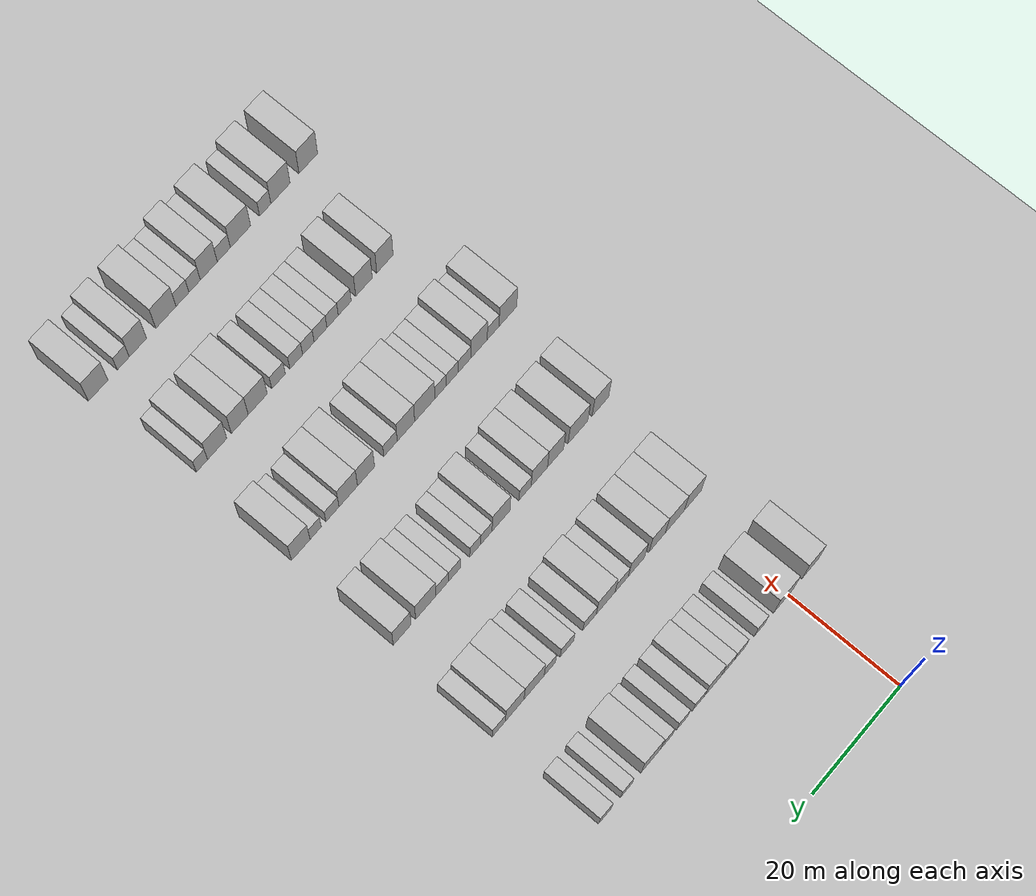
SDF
<sdf version="1.6">
 <world name="default">
  <include><name>ground_plane_1</name><uri>model://HANNAS_ground_plane</uri></include>
  <include>
   <name>ground_plane_2</name>
   <uri>model://HANNAS_ground_plane</uri>
   <pose>100 0 0  0 0 0</pose>
  </include>
  <model name="building_91">
   <static>1</static>
   <pose>25.0000 -4.8727 0 0.000000 0.000000 0.000000</pose>
   <link name="link">
    <pose>0 0 4.50 0 0 0</pose>
    <collision name="collision"><geometry><box><size>10.0000 3.7744 9.0000</size></box></geometry></collision>
    <visual name="visual">
     <cast_shadows>0</cast_shadows>
     <geometry><box><size>10.0000 3.7744 9.0000</size></box></geometry>
     <material>
      <script>
       <uri>model://HANNAS_wall/materials/scripts</uri>
       <uri>model://HANNAS_wall/materials/textures</uri>
       <name>vrc/HANNAS_wall</name>
      </script>
     </material>
    </visual>
   </link>
  </model>
  <model name="building_92">
   <static>1</static>
   <pose>25.0000 1.2493 0 0.000000 0.000000 0.000000</pose>
   <link name="link">
    <pose>0 0 4.50 0 0 0</pose>
    <collision name="collision"><geometry><box><size>10.0000 4.4696 9.0000</size></box></geometry></collision>
    <visual name="visual">
     <cast_shadows>0</cast_shadows>
     <geometry><box><size>10.0000 4.4696 9.0000</size></box></geometry>
     <material>
      <script>
       <uri>model://HANNAS_wall/materials/scripts</uri>
       <uri>model://HANNAS_wall/materials/textures</uri>
       <name>vrc/HANNAS_wall</name>
      </script>
     </material>
    </visual>
   </link>
  </model>
  <model name="building_93">
   <static>1</static>
   <pose>25.0000 6.6872 0 0.000000 0.000000 0.000000</pose>
   <link name="link">
    <pose>0 0 3.00 0 0 0</pose>
    <collision name="collision"><geometry><box><size>10.0000 2.4061 6.0000</size></box></geometry></collision>
    <visual name="visual">
     <cast_shadows>0</cast_shadows>
     <geometry><box><size>10.0000 2.4061 6.0000</size></box></geometry>
     <material>
      <script>
       <uri>model://HANNAS_wall/materials/scripts</uri>
       <uri>model://HANNAS_wall/materials/textures</uri>
       <name>vrc/HANNAS_wall</name>
      </script>
     </material>
    </visual>
   </link>
  </model>
  <model name="building_94">
   <static>1</static>
   <pose>25.0000 11.1910 0 0.000000 0.000000 0.000000</pose>
   <link name="link">
    <pose>0 0 3.00 0 0 0</pose>
    <collision name="collision"><geometry><box><size>10.0000 2.6015 6.0000</size></box></geometry></collision>
    <visual name="visual">
     <cast_shadows>0</cast_shadows>
     <geometry><box><size>10.0000 2.6015 6.0000</size></box></geometry>
     <material>
      <script>
       <uri>model://HANNAS_wall/materials/scripts</uri>
       <uri>model://HANNAS_wall/materials/textures</uri>
       <name>vrc/HANNAS_wall</name>
      </script>
     </material>
    </visual>
   </link>
  </model>
  <model name="building_95">
   <static>1</static>
   <pose>25.0000 13.9450 0 0.000000 0.000000 0.000000</pose>
   <link name="link">
    <pose>0 0 3.00 0 0 0</pose>
    <collision name="collision"><geometry><box><size>10.0000 2.9067 6.0000</size></box></geometry></collision>
    <visual name="visual">
     <cast_shadows>0</cast_shadows>
     <geometry><box><size>10.0000 2.9067 6.0000</size></box></geometry>
     <material>
      <script>
       <uri>model://HANNAS_wall/materials/scripts</uri>
       <uri>model://HANNAS_wall/materials/textures</uri>
       <name>vrc/HANNAS_wall</name>
      </script>
     </material>
    </visual>
   </link>
  </model>
  <model name="building_96">
   <static>1</static>
   <pose>25.0000 17.2794 0 0.000000 0.000000 0.000000</pose>
   <link name="link">
    <pose>0 0 4.50 0 0 0</pose>
    <collision name="collision"><geometry><box><size>10.0000 3.7620 9.0000</size></box></geometry></collision>
    <visual name="visual">
     <cast_shadows>0</cast_shadows>
     <geometry><box><size>10.0000 3.7620 9.0000</size></box></geometry>
     <material>
      <script>
       <uri>model://HANNAS_wall/materials/scripts</uri>
       <uri>model://HANNAS_wall/materials/textures</uri>
       <name>vrc/HANNAS_wall</name>
      </script>
     </material>
    </visual>
   </link>
  </model>
  <model name="building_97">
   <static>1</static>
   <pose>25.0000 20.4847 0 0.000000 0.000000 0.000000</pose>
   <link name="link">
    <pose>0 0 3.00 0 0 0</pose>
    <collision name="collision"><geometry><box><size>10.0000 2.6488 6.0000</size></box></geometry></collision>
    <visual name="visual">
     <cast_shadows>0</cast_shadows>
     <geometry><box><size>10.0000 2.6488 6.0000</size></box></geometry>
     <material>
      <script>
       <uri>model://HANNAS_wall/materials/scripts</uri>
       <uri>model://HANNAS_wall/materials/textures</uri>
       <name>vrc/HANNAS_wall</name>
      </script>
     </material>
    </visual>
   </link>
  </model>
  <model name="building_98">
   <static>1</static>
   <pose>25.0000 24.0516 0 0.000000 0.000000 0.000000</pose>
   <link name="link">
    <pose>0 0 3.00 0 0 0</pose>
    <collision name="collision"><geometry><box><size>10.0000 2.4849 6.0000</size></box></geometry></collision>
    <visual name="visual">
     <cast_shadows>0</cast_shadows>
     <geometry><box><size>10.0000 2.4849 6.0000</size></box></geometry>
     <material>
      <script>
       <uri>model://HANNAS_wall/materials/scripts</uri>
       <uri>model://HANNAS_wall/materials/textures</uri>
       <name>vrc/HANNAS_wall</name>
      </script>
     </material>
    </visual>
   </link>
  </model>
  <model name="building_99">
   <static>1</static>
   <pose>25.0000 27.5423 0 0.000000 0.000000 0.000000</pose>
   <link name="link">
    <pose>0 0 3.00 0 0 0</pose>
    <collision name="collision"><geometry><box><size>10.0000 2.4965 6.0000</size></box></geometry></collision>
    <visual name="visual">
     <cast_shadows>0</cast_shadows>
     <geometry><box><size>10.0000 2.4965 6.0000</size></box></geometry>
     <material>
      <script>
       <uri>model://HANNAS_wall/materials/scripts</uri>
       <uri>model://HANNAS_wall/materials/textures</uri>
       <name>vrc/HANNAS_wall</name>
      </script>
     </material>
    </visual>
   </link>
  </model>
  <model name="building_100">
   <static>1</static>
   <pose>25.0000 30.9717 0 0.000000 0.000000 0.000000</pose>
   <link name="link">
    <pose>0 0 4.50 0 0 0</pose>
    <collision name="collision"><geometry><box><size>10.0000 4.3622 9.0000</size></box></geometry></collision>
    <visual name="visual">
     <cast_shadows>0</cast_shadows>
     <geometry><box><size>10.0000 4.3622 9.0000</size></box></geometry>
     <material>
      <script>
       <uri>model://HANNAS_wall/materials/scripts</uri>
       <uri>model://HANNAS_wall/materials/textures</uri>
       <name>vrc/HANNAS_wall</name>
      </script>
     </material>
    </visual>
   </link>
  </model>
  <model name="building_101">
   <static>1</static>
   <pose>25.0000 36.3981 0 0.000000 0.000000 0.000000</pose>
   <link name="link">
    <pose>0 0 3.00 0 0 0</pose>
    <collision name="collision"><geometry><box><size>10.0000 2.4907 6.0000</size></box></geometry></collision>
    <visual name="visual">
     <cast_shadows>0</cast_shadows>
     <geometry><box><size>10.0000 2.4907 6.0000</size></box></geometry>
     <material>
      <script>
       <uri>model://HANNAS_wall/materials/scripts</uri>
       <uri>model://HANNAS_wall/materials/textures</uri>
       <name>vrc/HANNAS_wall</name>
      </script>
     </material>
    </visual>
   </link>
  </model>
  <model name="building_102">
   <static>1</static>
   <pose>25.0000 41.0249 0 0.000000 0.000000 0.000000</pose>
   <link name="link">
    <pose>0 0 3.00 0 0 0</pose>
    <collision name="collision"><geometry><box><size>10.0000 2.7629 6.0000</size></box></geometry></collision>
    <visual name="visual">
     <cast_shadows>0</cast_shadows>
     <geometry><box><size>10.0000 2.7629 6.0000</size></box></geometry>
     <material>
      <script>
       <uri>model://HANNAS_wall/materials/scripts</uri>
       <uri>model://HANNAS_wall/materials/textures</uri>
       <name>vrc/HANNAS_wall</name>
      </script>
     </material>
    </visual>
   </link>
  </model>
  <model name="building_256">
   <static>1</static>
   <pose>44.0000 -1.8408 0 0.000000 0.000000 0.000000</pose>
   <link name="link">
    <pose>0 0 4.50 0 0 0</pose>
    <collision name="collision"><geometry><box><size>10.0000 3.8670 9.0000</size></box></geometry></collision>
    <visual name="visual">
     <cast_shadows>0</cast_shadows>
     <geometry><box><size>10.0000 3.8670 9.0000</size></box></geometry>
     <material>
      <script>
       <uri>model://HANNAS_wall/materials/scripts</uri>
       <uri>model://HANNAS_wall/materials/textures</uri>
       <name>vrc/HANNAS_wall</name>
      </script>
     </material>
    </visual>
   </link>
  </model>
  <model name="building_257">
   <static>1</static>
   <pose>44.0000 2.2247 0 0.000000 0.000000 0.000000</pose>
   <link name="link">
    <pose>0 0 4.50 0 0 0</pose>
    <collision name="collision"><geometry><box><size>10.0000 4.2639 9.0000</size></box></geometry></collision>
    <visual name="visual">
     <cast_shadows>0</cast_shadows>
     <geometry><box><size>10.0000 4.2639 9.0000</size></box></geometry>
     <material>
      <script>
       <uri>model://HANNAS_wall/materials/scripts</uri>
       <uri>model://HANNAS_wall/materials/textures</uri>
       <name>vrc/HANNAS_wall</name>
      </script>
     </material>
    </visual>
   </link>
  </model>
  <model name="building_258">
   <static>1</static>
   <pose>44.0000 6.2147 0 0.000000 0.000000 0.000000</pose>
   <link name="link">
    <pose>0 0 4.50 0 0 0</pose>
    <collision name="collision"><geometry><box><size>10.0000 3.7161 9.0000</size></box></geometry></collision>
    <visual name="visual">
     <cast_shadows>0</cast_shadows>
     <geometry><box><size>10.0000 3.7161 9.0000</size></box></geometry>
     <material>
      <script>
       <uri>model://HANNAS_wall/materials/scripts</uri>
       <uri>model://HANNAS_wall/materials/textures</uri>
       <name>vrc/HANNAS_wall</name>
      </script>
     </material>
    </visual>
   </link>
  </model>
  <model name="building_259">
   <static>1</static>
   <pose>44.0000 10.9069 0 0.000000 0.000000 0.000000</pose>
   <link name="link">
    <pose>0 0 4.50 0 0 0</pose>
    <collision name="collision"><geometry><box><size>10.0000 3.6683 9.0000</size></box></geometry></collision>
    <visual name="visual">
     <cast_shadows>0</cast_shadows>
     <geometry><box><size>10.0000 3.6683 9.0000</size></box></geometry>
     <material>
      <script>
       <uri>model://HANNAS_wall/materials/scripts</uri>
       <uri>model://HANNAS_wall/materials/textures</uri>
       <name>vrc/HANNAS_wall</name>
      </script>
     </material>
    </visual>
   </link>
  </model>
  <model name="building_260">
   <static>1</static>
   <pose>44.0000 14.2180 0 0.000000 0.000000 0.000000</pose>
   <link name="link">
    <pose>0 0 3.00 0 0 0</pose>
    <collision name="collision"><geometry><box><size>10.0000 2.9540 6.0000</size></box></geometry></collision>
    <visual name="visual">
     <cast_shadows>0</cast_shadows>
     <geometry><box><size>10.0000 2.9540 6.0000</size></box></geometry>
     <material>
      <script>
       <uri>model://HANNAS_wall/materials/scripts</uri>
       <uri>model://HANNAS_wall/materials/textures</uri>
       <name>vrc/HANNAS_wall</name>
      </script>
     </material>
    </visual>
   </link>
  </model>
  <model name="building_261">
   <static>1</static>
   <pose>44.0000 17.8065 0 0.000000 0.000000 0.000000</pose>
   <link name="link">
    <pose>0 0 4.50 0 0 0</pose>
    <collision name="collision"><geometry><box><size>10.0000 4.2230 9.0000</size></box></geometry></collision>
    <visual name="visual">
     <cast_shadows>0</cast_shadows>
     <geometry><box><size>10.0000 4.2230 9.0000</size></box></geometry>
     <material>
      <script>
       <uri>model://HANNAS_wall/materials/scripts</uri>
       <uri>model://HANNAS_wall/materials/textures</uri>
       <name>vrc/HANNAS_wall</name>
      </script>
     </material>
    </visual>
   </link>
  </model>
  <model name="building_262">
   <static>1</static>
   <pose>44.0000 21.3957 0 0.000000 0.000000 0.000000</pose>
   <link name="link">
    <pose>0 0 3.00 0 0 0</pose>
    <collision name="collision"><geometry><box><size>10.0000 2.9553 6.0000</size></box></geometry></collision>
    <visual name="visual">
     <cast_shadows>0</cast_shadows>
     <geometry><box><size>10.0000 2.9553 6.0000</size></box></geometry>
     <material>
      <script>
       <uri>model://HANNAS_wall/materials/scripts</uri>
       <uri>model://HANNAS_wall/materials/textures</uri>
       <name>vrc/HANNAS_wall</name>
      </script>
     </material>
    </visual>
   </link>
  </model>
  <model name="building_263">
   <static>1</static>
   <pose>44.0000 26.3641 0 0.000000 0.000000 0.000000</pose>
   <link name="link">
    <pose>0 0 3.00 0 0 0</pose>
    <collision name="collision"><geometry><box><size>10.0000 2.9815 6.0000</size></box></geometry></collision>
    <visual name="visual">
     <cast_shadows>0</cast_shadows>
     <geometry><box><size>10.0000 2.9815 6.0000</size></box></geometry>
     <material>
      <script>
       <uri>model://HANNAS_wall/materials/scripts</uri>
       <uri>model://HANNAS_wall/materials/textures</uri>
       <name>vrc/HANNAS_wall</name>
      </script>
     </material>
    </visual>
   </link>
  </model>
  <model name="building_264">
   <static>1</static>
   <pose>44.0000 30.1010 0 0.000000 0.000000 0.000000</pose>
   <link name="link">
    <pose>0 0 3.00 0 0 0</pose>
    <collision name="collision"><geometry><box><size>10.0000 2.4922 6.0000</size></box></geometry></collision>
    <visual name="visual">
     <cast_shadows>0</cast_shadows>
     <geometry><box><size>10.0000 2.4922 6.0000</size></box></geometry>
     <material>
      <script>
       <uri>model://HANNAS_wall/materials/scripts</uri>
       <uri>model://HANNAS_wall/materials/textures</uri>
       <name>vrc/HANNAS_wall</name>
      </script>
     </material>
    </visual>
   </link>
  </model>
  <model name="building_265">
   <static>1</static>
   <pose>44.0000 33.5569 0 0.000000 0.000000 0.000000</pose>
   <link name="link">
    <pose>0 0 4.50 0 0 0</pose>
    <collision name="collision"><geometry><box><size>10.0000 4.4196 9.0000</size></box></geometry></collision>
    <visual name="visual">
     <cast_shadows>0</cast_shadows>
     <geometry><box><size>10.0000 4.4196 9.0000</size></box></geometry>
     <material>
      <script>
       <uri>model://HANNAS_wall/materials/scripts</uri>
       <uri>model://HANNAS_wall/materials/textures</uri>
       <name>vrc/HANNAS_wall</name>
      </script>
     </material>
    </visual>
   </link>
  </model>
  <model name="building_266">
   <static>1</static>
   <pose>44.0000 37.7919 0 0.000000 0.000000 0.000000</pose>
   <link name="link">
    <pose>0 0 4.50 0 0 0</pose>
    <collision name="collision"><geometry><box><size>10.0000 4.0503 9.0000</size></box></geometry></collision>
    <visual name="visual">
     <cast_shadows>0</cast_shadows>
     <geometry><box><size>10.0000 4.0503 9.0000</size></box></geometry>
     <material>
      <script>
       <uri>model://HANNAS_wall/materials/scripts</uri>
       <uri>model://HANNAS_wall/materials/textures</uri>
       <name>vrc/HANNAS_wall</name>
      </script>
     </material>
    </visual>
   </link>
  </model>
  <model name="building_267">
   <static>1</static>
   <pose>44.0000 41.2359 0 0.000000 0.000000 0.000000</pose>
   <link name="link">
    <pose>0 0 3.00 0 0 0</pose>
    <collision name="collision"><geometry><box><size>10.0000 2.8377 6.0000</size></box></geometry></collision>
    <visual name="visual">
     <cast_shadows>0</cast_shadows>
     <geometry><box><size>10.0000 2.8377 6.0000</size></box></geometry>
     <material>
      <script>
       <uri>model://HANNAS_wall/materials/scripts</uri>
       <uri>model://HANNAS_wall/materials/textures</uri>
       <name>vrc/HANNAS_wall</name>
      </script>
     </material>
    </visual>
   </link>
  </model>
  <model name="building_426">
   <static>1</static>
   <pose>63.0000 -4.1653 0 0.000000 0.000000 0.000000</pose>
   <link name="link">
    <pose>0 0 4.50 0 0 0</pose>
    <collision name="collision"><geometry><box><size>10.0000 3.7519 9.0000</size></box></geometry></collision>
    <visual name="visual">
     <cast_shadows>0</cast_shadows>
     <geometry><box><size>10.0000 3.7519 9.0000</size></box></geometry>
     <material>
      <script>
       <uri>model://HANNAS_wall/materials/scripts</uri>
       <uri>model://HANNAS_wall/materials/textures</uri>
       <name>vrc/HANNAS_wall</name>
      </script>
     </material>
    </visual>
   </link>
  </model>
  <model name="building_427">
   <static>1</static>
   <pose>63.0000 0.9370 0 0.000000 0.000000 0.000000</pose>
   <link name="link">
    <pose>0 0 4.50 0 0 0</pose>
    <collision name="collision"><geometry><box><size>10.0000 4.4528 9.0000</size></box></geometry></collision>
    <visual name="visual">
     <cast_shadows>0</cast_shadows>
     <geometry><box><size>10.0000 4.4528 9.0000</size></box></geometry>
     <material>
      <script>
       <uri>model://HANNAS_wall/materials/scripts</uri>
       <uri>model://HANNAS_wall/materials/textures</uri>
       <name>vrc/HANNAS_wall</name>
      </script>
     </material>
    </visual>
   </link>
  </model>
  <model name="building_428">
   <static>1</static>
   <pose>63.0000 5.9666 0 0.000000 0.000000 0.000000</pose>
   <link name="link">
    <pose>0 0 4.50 0 0 0</pose>
    <collision name="collision"><geometry><box><size>10.0000 3.6063 9.0000</size></box></geometry></collision>
    <visual name="visual">
     <cast_shadows>0</cast_shadows>
     <geometry><box><size>10.0000 3.6063 9.0000</size></box></geometry>
     <material>
      <script>
       <uri>model://HANNAS_wall/materials/scripts</uri>
       <uri>model://HANNAS_wall/materials/textures</uri>
       <name>vrc/HANNAS_wall</name>
      </script>
     </material>
    </visual>
   </link>
  </model>
  <model name="building_429">
   <static>1</static>
   <pose>63.0000 9.6112 0 0.000000 0.000000 0.000000</pose>
   <link name="link">
    <pose>0 0 4.50 0 0 0</pose>
    <collision name="collision"><geometry><box><size>10.0000 3.6830 9.0000</size></box></geometry></collision>
    <visual name="visual">
     <cast_shadows>0</cast_shadows>
     <geometry><box><size>10.0000 3.6830 9.0000</size></box></geometry>
     <material>
      <script>
       <uri>model://HANNAS_wall/materials/scripts</uri>
       <uri>model://HANNAS_wall/materials/textures</uri>
       <name>vrc/HANNAS_wall</name>
      </script>
     </material>
    </visual>
   </link>
  </model>
  <model name="building_430">
   <static>1</static>
   <pose>63.0000 12.8098 0 0.000000 0.000000 0.000000</pose>
   <link name="link">
    <pose>0 0 3.00 0 0 0</pose>
    <collision name="collision"><geometry><box><size>10.0000 2.7142 6.0000</size></box></geometry></collision>
    <visual name="visual">
     <cast_shadows>0</cast_shadows>
     <geometry><box><size>10.0000 2.7142 6.0000</size></box></geometry>
     <material>
      <script>
       <uri>model://HANNAS_wall/materials/scripts</uri>
       <uri>model://HANNAS_wall/materials/textures</uri>
       <name>vrc/HANNAS_wall</name>
      </script>
     </material>
    </visual>
   </link>
  </model>
  <model name="building_431">
   <static>1</static>
   <pose>63.0000 18.1461 0 0.000000 0.000000 0.000000</pose>
   <link name="link">
    <pose>0 0 4.50 0 0 0</pose>
    <collision name="collision"><geometry><box><size>10.0000 3.9585 9.0000</size></box></geometry></collision>
    <visual name="visual">
     <cast_shadows>0</cast_shadows>
     <geometry><box><size>10.0000 3.9585 9.0000</size></box></geometry>
     <material>
      <script>
       <uri>model://HANNAS_wall/materials/scripts</uri>
       <uri>model://HANNAS_wall/materials/textures</uri>
       <name>vrc/HANNAS_wall</name>
      </script>
     </material>
    </visual>
   </link>
  </model>
  <model name="building_432">
   <static>1</static>
   <pose>63.0000 21.3712 0 0.000000 0.000000 0.000000</pose>
   <link name="link">
    <pose>0 0 3.00 0 0 0</pose>
    <collision name="collision"><geometry><box><size>10.0000 2.4916 6.0000</size></box></geometry></collision>
    <visual name="visual">
     <cast_shadows>0</cast_shadows>
     <geometry><box><size>10.0000 2.4916 6.0000</size></box></geometry>
     <material>
      <script>
       <uri>model://HANNAS_wall/materials/scripts</uri>
       <uri>model://HANNAS_wall/materials/textures</uri>
       <name>vrc/HANNAS_wall</name>
      </script>
     </material>
    </visual>
   </link>
  </model>
  <model name="building_433">
   <static>1</static>
   <pose>63.0000 23.8343 0 0.000000 0.000000 0.000000</pose>
   <link name="link">
    <pose>0 0 3.00 0 0 0</pose>
    <collision name="collision"><geometry><box><size>10.0000 2.4346 6.0000</size></box></geometry></collision>
    <visual name="visual">
     <cast_shadows>0</cast_shadows>
     <geometry><box><size>10.0000 2.4346 6.0000</size></box></geometry>
     <material>
      <script>
       <uri>model://HANNAS_wall/materials/scripts</uri>
       <uri>model://HANNAS_wall/materials/textures</uri>
       <name>vrc/HANNAS_wall</name>
      </script>
     </material>
    </visual>
   </link>
  </model>
  <model name="building_434">
   <static>1</static>
   <pose>63.0000 28.3450 0 0.000000 0.000000 0.000000</pose>
   <link name="link">
    <pose>0 0 3.00 0 0 0</pose>
    <collision name="collision"><geometry><box><size>10.0000 2.5866 6.0000</size></box></geometry></collision>
    <visual name="visual">
     <cast_shadows>0</cast_shadows>
     <geometry><box><size>10.0000 2.5866 6.0000</size></box></geometry>
     <material>
      <script>
       <uri>model://HANNAS_wall/materials/scripts</uri>
       <uri>model://HANNAS_wall/materials/textures</uri>
       <name>vrc/HANNAS_wall</name>
      </script>
     </material>
    </visual>
   </link>
  </model>
  <model name="building_435">
   <static>1</static>
   <pose>63.0000 31.0488 0 0.000000 0.000000 0.000000</pose>
   <link name="link">
    <pose>0 0 3.00 0 0 0</pose>
    <collision name="collision"><geometry><box><size>10.0000 2.8210 6.0000</size></box></geometry></collision>
    <visual name="visual">
     <cast_shadows>0</cast_shadows>
     <geometry><box><size>10.0000 2.8210 6.0000</size></box></geometry>
     <material>
      <script>
       <uri>model://HANNAS_wall/materials/scripts</uri>
       <uri>model://HANNAS_wall/materials/textures</uri>
       <name>vrc/HANNAS_wall</name>
      </script>
     </material>
    </visual>
   </link>
  </model>
  <model name="building_436">
   <static>1</static>
   <pose>63.0000 34.6645 0 0.000000 0.000000 0.000000</pose>
   <link name="link">
    <pose>0 0 4.50 0 0 0</pose>
    <collision name="collision"><geometry><box><size>10.0000 4.4104 9.0000</size></box></geometry></collision>
    <visual name="visual">
     <cast_shadows>0</cast_shadows>
     <geometry><box><size>10.0000 4.4104 9.0000</size></box></geometry>
     <material>
      <script>
       <uri>model://HANNAS_wall/materials/scripts</uri>
       <uri>model://HANNAS_wall/materials/textures</uri>
       <name>vrc/HANNAS_wall</name>
      </script>
     </material>
    </visual>
   </link>
  </model>
  <model name="building_437">
   <static>1</static>
   <pose>63.0000 39.7954 0 0.000000 0.000000 0.000000</pose>
   <link name="link">
    <pose>0 0 4.50 0 0 0</pose>
    <collision name="collision"><geometry><box><size>10.0000 3.8514 9.0000</size></box></geometry></collision>
    <visual name="visual">
     <cast_shadows>0</cast_shadows>
     <geometry><box><size>10.0000 3.8514 9.0000</size></box></geometry>
     <material>
      <script>
       <uri>model://HANNAS_wall/materials/scripts</uri>
       <uri>model://HANNAS_wall/materials/textures</uri>
       <name>vrc/HANNAS_wall</name>
      </script>
     </material>
    </visual>
   </link>
  </model>
  <model name="building_607">
   <static>1</static>
   <pose>82.0000 -6.0322 0 0.000000 0.000000 0.000000</pose>
   <link name="link">
    <pose>0 0 4.50 0 0 0</pose>
    <collision name="collision"><geometry><box><size>10.0000 4.0158 9.0000</size></box></geometry></collision>
    <visual name="visual">
     <cast_shadows>0</cast_shadows>
     <geometry><box><size>10.0000 4.0158 9.0000</size></box></geometry>
     <material>
      <script>
       <uri>model://HANNAS_wall/materials/scripts</uri>
       <uri>model://HANNAS_wall/materials/textures</uri>
       <name>vrc/HANNAS_wall</name>
      </script>
     </material>
    </visual>
   </link>
  </model>
  <model name="building_608">
   <static>1</static>
   <pose>82.0000 -2.6864 0 0.000000 0.000000 0.000000</pose>
   <link name="link">
    <pose>0 0 3.00 0 0 0</pose>
    <collision name="collision"><geometry><box><size>10.0000 2.6757 6.0000</size></box></geometry></collision>
    <visual name="visual">
     <cast_shadows>0</cast_shadows>
     <geometry><box><size>10.0000 2.6757 6.0000</size></box></geometry>
     <material>
      <script>
       <uri>model://HANNAS_wall/materials/scripts</uri>
       <uri>model://HANNAS_wall/materials/textures</uri>
       <name>vrc/HANNAS_wall</name>
      </script>
     </material>
    </visual>
   </link>
  </model>
  <model name="building_609">
   <static>1</static>
   <pose>82.0000 0.4832 0 0.000000 0.000000 0.000000</pose>
   <link name="link">
    <pose>0 0 4.50 0 0 0</pose>
    <collision name="collision"><geometry><box><size>10.0000 3.6636 9.0000</size></box></geometry></collision>
    <visual name="visual">
     <cast_shadows>0</cast_shadows>
     <geometry><box><size>10.0000 3.6636 9.0000</size></box></geometry>
     <material>
      <script>
       <uri>model://HANNAS_wall/materials/scripts</uri>
       <uri>model://HANNAS_wall/materials/textures</uri>
       <name>vrc/HANNAS_wall</name>
      </script>
     </material>
    </visual>
   </link>
  </model>
  <model name="building_610">
   <static>1</static>
   <pose>82.0000 3.7580 0 0.000000 0.000000 0.000000</pose>
   <link name="link">
    <pose>0 0 3.00 0 0 0</pose>
    <collision name="collision"><geometry><box><size>10.0000 2.8861 6.0000</size></box></geometry></collision>
    <visual name="visual">
     <cast_shadows>0</cast_shadows>
     <geometry><box><size>10.0000 2.8861 6.0000</size></box></geometry>
     <material>
      <script>
       <uri>model://HANNAS_wall/materials/scripts</uri>
       <uri>model://HANNAS_wall/materials/textures</uri>
       <name>vrc/HANNAS_wall</name>
      </script>
     </material>
    </visual>
   </link>
  </model>
  <model name="building_611">
   <static>1</static>
   <pose>82.0000 6.5453 0 0.000000 0.000000 0.000000</pose>
   <link name="link">
    <pose>0 0 3.00 0 0 0</pose>
    <collision name="collision"><geometry><box><size>10.0000 2.6884 6.0000</size></box></geometry></collision>
    <visual name="visual">
     <cast_shadows>0</cast_shadows>
     <geometry><box><size>10.0000 2.6884 6.0000</size></box></geometry>
     <material>
      <script>
       <uri>model://HANNAS_wall/materials/scripts</uri>
       <uri>model://HANNAS_wall/materials/textures</uri>
       <name>vrc/HANNAS_wall</name>
      </script>
     </material>
    </visual>
   </link>
  </model>
  <model name="building_612">
   <static>1</static>
   <pose>82.0000 9.1424 0 0.000000 0.000000 0.000000</pose>
   <link name="link">
    <pose>0 0 3.00 0 0 0</pose>
    <collision name="collision"><geometry><box><size>10.0000 2.5058 6.0000</size></box></geometry></collision>
    <visual name="visual">
     <cast_shadows>0</cast_shadows>
     <geometry><box><size>10.0000 2.5058 6.0000</size></box></geometry>
     <material>
      <script>
       <uri>model://HANNAS_wall/materials/scripts</uri>
       <uri>model://HANNAS_wall/materials/textures</uri>
       <name>vrc/HANNAS_wall</name>
      </script>
     </material>
    </visual>
   </link>
  </model>
  <model name="building_613">
   <static>1</static>
   <pose>82.0000 12.6385 0 0.000000 0.000000 0.000000</pose>
   <link name="link">
    <pose>0 0 4.50 0 0 0</pose>
    <collision name="collision"><geometry><box><size>10.0000 4.4865 9.0000</size></box></geometry></collision>
    <visual name="visual">
     <cast_shadows>0</cast_shadows>
     <geometry><box><size>10.0000 4.4865 9.0000</size></box></geometry>
     <material>
      <script>
       <uri>model://HANNAS_wall/materials/scripts</uri>
       <uri>model://HANNAS_wall/materials/textures</uri>
       <name>vrc/HANNAS_wall</name>
      </script>
     </material>
    </visual>
   </link>
  </model>
  <model name="building_614">
   <static>1</static>
   <pose>82.0000 16.8114 0 0.000000 0.000000 0.000000</pose>
   <link name="link">
    <pose>0 0 4.50 0 0 0</pose>
    <collision name="collision"><geometry><box><size>10.0000 3.8592 9.0000</size></box></geometry></collision>
    <visual name="visual">
     <cast_shadows>0</cast_shadows>
     <geometry><box><size>10.0000 3.8592 9.0000</size></box></geometry>
     <material>
      <script>
       <uri>model://HANNAS_wall/materials/scripts</uri>
       <uri>model://HANNAS_wall/materials/textures</uri>
       <name>vrc/HANNAS_wall</name>
      </script>
     </material>
    </visual>
   </link>
  </model>
  <model name="building_615">
   <static>1</static>
   <pose>82.0000 20.2291 0 0.000000 0.000000 0.000000</pose>
   <link name="link">
    <pose>0 0 3.00 0 0 0</pose>
    <collision name="collision"><geometry><box><size>10.0000 2.9764 6.0000</size></box></geometry></collision>
    <visual name="visual">
     <cast_shadows>0</cast_shadows>
     <geometry><box><size>10.0000 2.9764 6.0000</size></box></geometry>
     <material>
      <script>
       <uri>model://HANNAS_wall/materials/scripts</uri>
       <uri>model://HANNAS_wall/materials/textures</uri>
       <name>vrc/HANNAS_wall</name>
      </script>
     </material>
    </visual>
   </link>
  </model>
  <model name="building_616">
   <static>1</static>
   <pose>82.0000 25.5865 0 0.000000 0.000000 0.000000</pose>
   <link name="link">
    <pose>0 0 4.50 0 0 0</pose>
    <collision name="collision"><geometry><box><size>10.0000 3.7384 9.0000</size></box></geometry></collision>
    <visual name="visual">
     <cast_shadows>0</cast_shadows>
     <geometry><box><size>10.0000 3.7384 9.0000</size></box></geometry>
     <material>
      <script>
       <uri>model://HANNAS_wall/materials/scripts</uri>
       <uri>model://HANNAS_wall/materials/textures</uri>
       <name>vrc/HANNAS_wall</name>
      </script>
     </material>
    </visual>
   </link>
  </model>
  <model name="building_617">
   <static>1</static>
   <pose>82.0000 29.4740 0 0.000000 0.000000 0.000000</pose>
   <link name="link">
    <pose>0 0 4.50 0 0 0</pose>
    <collision name="collision"><geometry><box><size>10.0000 4.0366 9.0000</size></box></geometry></collision>
    <visual name="visual">
     <cast_shadows>0</cast_shadows>
     <geometry><box><size>10.0000 4.0366 9.0000</size></box></geometry>
     <material>
      <script>
       <uri>model://HANNAS_wall/materials/scripts</uri>
       <uri>model://HANNAS_wall/materials/textures</uri>
       <name>vrc/HANNAS_wall</name>
      </script>
     </material>
    </visual>
   </link>
  </model>
  <model name="building_618">
   <static>1</static>
   <pose>82.0000 32.9194 0 0.000000 0.000000 0.000000</pose>
   <link name="link">
    <pose>0 0 3.00 0 0 0</pose>
    <collision name="collision"><geometry><box><size>10.0000 2.8542 6.0000</size></box></geometry></collision>
    <visual name="visual">
     <cast_shadows>0</cast_shadows>
     <geometry><box><size>10.0000 2.8542 6.0000</size></box></geometry>
     <material>
      <script>
       <uri>model://HANNAS_wall/materials/scripts</uri>
       <uri>model://HANNAS_wall/materials/textures</uri>
       <name>vrc/HANNAS_wall</name>
      </script>
     </material>
    </visual>
   </link>
  </model>
  <model name="building_619">
   <static>1</static>
   <pose>82.0000 36.5651 0 0.000000 0.000000 0.000000</pose>
   <link name="link">
    <pose>0 0 3.00 0 0 0</pose>
    <collision name="collision"><geometry><box><size>10.0000 2.4373 6.0000</size></box></geometry></collision>
    <visual name="visual">
     <cast_shadows>0</cast_shadows>
     <geometry><box><size>10.0000 2.4373 6.0000</size></box></geometry>
     <material>
      <script>
       <uri>model://HANNAS_wall/materials/scripts</uri>
       <uri>model://HANNAS_wall/materials/textures</uri>
       <name>vrc/HANNAS_wall</name>
      </script>
     </material>
    </visual>
   </link>
  </model>
  <model name="building_620">
   <static>1</static>
   <pose>82.0000 39.7896 0 0.000000 0.000000 0.000000</pose>
   <link name="link">
    <pose>0 0 4.50 0 0 0</pose>
    <collision name="collision"><geometry><box><size>10.0000 4.0117 9.0000</size></box></geometry></collision>
    <visual name="visual">
     <cast_shadows>0</cast_shadows>
     <geometry><box><size>10.0000 4.0117 9.0000</size></box></geometry>
     <material>
      <script>
       <uri>model://HANNAS_wall/materials/scripts</uri>
       <uri>model://HANNAS_wall/materials/textures</uri>
       <name>vrc/HANNAS_wall</name>
      </script>
     </material>
    </visual>
   </link>
  </model>
  <model name="building_778">
   <static>1</static>
   <pose>101.0000 -0.5883 0 0.000000 0.000000 0.000000</pose>
   <link name="link">
    <pose>0 0 4.50 0 0 0</pose>
    <collision name="collision"><geometry><box><size>10.0000 3.6702 9.0000</size></box></geometry></collision>
    <visual name="visual">
     <cast_shadows>0</cast_shadows>
     <geometry><box><size>10.0000 3.6702 9.0000</size></box></geometry>
     <material>
      <script>
       <uri>model://HANNAS_wall/materials/scripts</uri>
       <uri>model://HANNAS_wall/materials/textures</uri>
       <name>vrc/HANNAS_wall</name>
      </script>
     </material>
    </visual>
   </link>
  </model>
  <model name="building_779">
   <static>1</static>
   <pose>101.0000 4.0946 0 0.000000 0.000000 0.000000</pose>
   <link name="link">
    <pose>0 0 4.50 0 0 0</pose>
    <collision name="collision"><geometry><box><size>10.0000 3.6956 9.0000</size></box></geometry></collision>
    <visual name="visual">
     <cast_shadows>0</cast_shadows>
     <geometry><box><size>10.0000 3.6956 9.0000</size></box></geometry>
     <material>
      <script>
       <uri>model://HANNAS_wall/materials/scripts</uri>
       <uri>model://HANNAS_wall/materials/textures</uri>
       <name>vrc/HANNAS_wall</name>
      </script>
     </material>
    </visual>
   </link>
  </model>
  <model name="building_780">
   <static>1</static>
   <pose>101.0000 8.3862 0 0.000000 0.000000 0.000000</pose>
   <link name="link">
    <pose>0 0 3.00 0 0 0</pose>
    <collision name="collision"><geometry><box><size>10.0000 2.8876 6.0000</size></box></geometry></collision>
    <visual name="visual">
     <cast_shadows>0</cast_shadows>
     <geometry><box><size>10.0000 2.8876 6.0000</size></box></geometry>
     <material>
      <script>
       <uri>model://HANNAS_wall/materials/scripts</uri>
       <uri>model://HANNAS_wall/materials/textures</uri>
       <name>vrc/HANNAS_wall</name>
      </script>
     </material>
    </visual>
   </link>
  </model>
  <model name="building_781">
   <static>1</static>
   <pose>101.0000 11.0800 0 0.000000 0.000000 0.000000</pose>
   <link name="link">
    <pose>0 0 3.00 0 0 0</pose>
    <collision name="collision"><geometry><box><size>10.0000 2.5001 6.0000</size></box></geometry></collision>
    <visual name="visual">
     <cast_shadows>0</cast_shadows>
     <geometry><box><size>10.0000 2.5001 6.0000</size></box></geometry>
     <material>
      <script>
       <uri>model://HANNAS_wall/materials/scripts</uri>
       <uri>model://HANNAS_wall/materials/textures</uri>
       <name>vrc/HANNAS_wall</name>
      </script>
     </material>
    </visual>
   </link>
  </model>
  <model name="building_782">
   <static>1</static>
   <pose>101.0000 13.7573 0 0.000000 0.000000 0.000000</pose>
   <link name="link">
    <pose>0 0 3.00 0 0 0</pose>
    <collision name="collision"><geometry><box><size>10.0000 2.8545 6.0000</size></box></geometry></collision>
    <visual name="visual">
     <cast_shadows>0</cast_shadows>
     <geometry><box><size>10.0000 2.8545 6.0000</size></box></geometry>
     <material>
      <script>
       <uri>model://HANNAS_wall/materials/scripts</uri>
       <uri>model://HANNAS_wall/materials/textures</uri>
       <name>vrc/HANNAS_wall</name>
      </script>
     </material>
    </visual>
   </link>
  </model>
  <model name="building_783">
   <static>1</static>
   <pose>101.0000 16.4440 0 0.000000 0.000000 0.000000</pose>
   <link name="link">
    <pose>0 0 3.00 0 0 0</pose>
    <collision name="collision"><geometry><box><size>10.0000 2.5189 6.0000</size></box></geometry></collision>
    <visual name="visual">
     <cast_shadows>0</cast_shadows>
     <geometry><box><size>10.0000 2.5189 6.0000</size></box></geometry>
     <material>
      <script>
       <uri>model://HANNAS_wall/materials/scripts</uri>
       <uri>model://HANNAS_wall/materials/textures</uri>
       <name>vrc/HANNAS_wall</name>
      </script>
     </material>
    </visual>
   </link>
  </model>
  <model name="building_784">
   <static>1</static>
   <pose>101.0000 19.1076 0 0.000000 0.000000 0.000000</pose>
   <link name="link">
    <pose>0 0 3.00 0 0 0</pose>
    <collision name="collision"><geometry><box><size>10.0000 2.8083 6.0000</size></box></geometry></collision>
    <visual name="visual">
     <cast_shadows>0</cast_shadows>
     <geometry><box><size>10.0000 2.8083 6.0000</size></box></geometry>
     <material>
      <script>
       <uri>model://HANNAS_wall/materials/scripts</uri>
       <uri>model://HANNAS_wall/materials/textures</uri>
       <name>vrc/HANNAS_wall</name>
      </script>
     </material>
    </visual>
   </link>
  </model>
  <model name="building_785">
   <static>1</static>
   <pose>101.0000 22.9954 0 0.000000 0.000000 0.000000</pose>
   <link name="link">
    <pose>0 0 3.00 0 0 0</pose>
    <collision name="collision"><geometry><box><size>10.0000 2.9672 6.0000</size></box></geometry></collision>
    <visual name="visual">
     <cast_shadows>0</cast_shadows>
     <geometry><box><size>10.0000 2.9672 6.0000</size></box></geometry>
     <material>
      <script>
       <uri>model://HANNAS_wall/materials/scripts</uri>
       <uri>model://HANNAS_wall/materials/textures</uri>
       <name>vrc/HANNAS_wall</name>
      </script>
     </material>
    </visual>
   </link>
  </model>
  <model name="building_786">
   <static>1</static>
   <pose>101.0000 27.5535 0 0.000000 0.000000 0.000000</pose>
   <link name="link">
    <pose>0 0 4.50 0 0 0</pose>
    <collision name="collision"><geometry><box><size>10.0000 4.1490 9.0000</size></box></geometry></collision>
    <visual name="visual">
     <cast_shadows>0</cast_shadows>
     <geometry><box><size>10.0000 4.1490 9.0000</size></box></geometry>
     <material>
      <script>
       <uri>model://HANNAS_wall/materials/scripts</uri>
       <uri>model://HANNAS_wall/materials/textures</uri>
       <name>vrc/HANNAS_wall</name>
      </script>
     </material>
    </visual>
   </link>
  </model>
  <model name="building_787">
   <static>1</static>
   <pose>101.0000 31.4552 0 0.000000 0.000000 0.000000</pose>
   <link name="link">
    <pose>0 0 4.50 0 0 0</pose>
    <collision name="collision"><geometry><box><size>10.0000 3.6545 9.0000</size></box></geometry></collision>
    <visual name="visual">
     <cast_shadows>0</cast_shadows>
     <geometry><box><size>10.0000 3.6545 9.0000</size></box></geometry>
     <material>
      <script>
       <uri>model://HANNAS_wall/materials/scripts</uri>
       <uri>model://HANNAS_wall/materials/textures</uri>
       <name>vrc/HANNAS_wall</name>
      </script>
     </material>
    </visual>
   </link>
  </model>
  <model name="building_788">
   <static>1</static>
   <pose>101.0000 36.3546 0 0.000000 0.000000 0.000000</pose>
   <link name="link">
    <pose>0 0 4.50 0 0 0</pose>
    <collision name="collision"><geometry><box><size>10.0000 4.1444 9.0000</size></box></geometry></collision>
    <visual name="visual">
     <cast_shadows>0</cast_shadows>
     <geometry><box><size>10.0000 4.1444 9.0000</size></box></geometry>
     <material>
      <script>
       <uri>model://HANNAS_wall/materials/scripts</uri>
       <uri>model://HANNAS_wall/materials/textures</uri>
       <name>vrc/HANNAS_wall</name>
      </script>
     </material>
    </visual>
   </link>
  </model>
  <model name="building_789">
   <static>1</static>
   <pose>101.0000 39.6362 0 0.000000 0.000000 0.000000</pose>
   <link name="link">
    <pose>0 0 3.00 0 0 0</pose>
    <collision name="collision"><geometry><box><size>10.0000 2.4189 6.0000</size></box></geometry></collision>
    <visual name="visual">
     <cast_shadows>0</cast_shadows>
     <geometry><box><size>10.0000 2.4189 6.0000</size></box></geometry>
     <material>
      <script>
       <uri>model://HANNAS_wall/materials/scripts</uri>
       <uri>model://HANNAS_wall/materials/textures</uri>
       <name>vrc/HANNAS_wall</name>
      </script>
     </material>
    </visual>
   </link>
  </model>
  <model name="building_948">
   <static>1</static>
   <pose>120.0000 -5.2234 0 0.000000 0.000000 0.000000</pose>
   <link name="link">
    <pose>0 0 4.50 0 0 0</pose>
    <collision name="collision"><geometry><box><size>10.0000 4.1877 9.0000</size></box></geometry></collision>
    <visual name="visual">
     <cast_shadows>0</cast_shadows>
     <geometry><box><size>10.0000 4.1877 9.0000</size></box></geometry>
     <material>
      <script>
       <uri>model://HANNAS_wall/materials/scripts</uri>
       <uri>model://HANNAS_wall/materials/textures</uri>
       <name>vrc/HANNAS_wall</name>
      </script>
     </material>
    </visual>
   </link>
  </model>
  <model name="building_949">
   <static>1</static>
   <pose>120.0000 1.0146 0 0.000000 0.000000 0.000000</pose>
   <link name="link">
    <pose>0 0 4.50 0 0 0</pose>
    <collision name="collision"><geometry><box><size>10.0000 4.2883 9.0000</size></box></geometry></collision>
    <visual name="visual">
     <cast_shadows>0</cast_shadows>
     <geometry><box><size>10.0000 4.2883 9.0000</size></box></geometry>
     <material>
      <script>
       <uri>model://HANNAS_wall/materials/scripts</uri>
       <uri>model://HANNAS_wall/materials/textures</uri>
       <name>vrc/HANNAS_wall</name>
      </script>
     </material>
    </visual>
   </link>
  </model>
  <model name="building_950">
   <static>1</static>
   <pose>120.0000 4.4199 0 0.000000 0.000000 0.000000</pose>
   <link name="link">
    <pose>0 0 3.00 0 0 0</pose>
    <collision name="collision"><geometry><box><size>10.0000 2.5222 6.0000</size></box></geometry></collision>
    <visual name="visual">
     <cast_shadows>0</cast_shadows>
     <geometry><box><size>10.0000 2.5222 6.0000</size></box></geometry>
     <material>
      <script>
       <uri>model://HANNAS_wall/materials/scripts</uri>
       <uri>model://HANNAS_wall/materials/textures</uri>
       <name>vrc/HANNAS_wall</name>
      </script>
     </material>
    </visual>
   </link>
  </model>
  <model name="building_951">
   <static>1</static>
   <pose>120.0000 9.9224 0 0.000000 0.000000 0.000000</pose>
   <link name="link">
    <pose>0 0 4.50 0 0 0</pose>
    <collision name="collision"><geometry><box><size>10.0000 4.4829 9.0000</size></box></geometry></collision>
    <visual name="visual">
     <cast_shadows>0</cast_shadows>
     <geometry><box><size>10.0000 4.4829 9.0000</size></box></geometry>
     <material>
      <script>
       <uri>model://HANNAS_wall/materials/scripts</uri>
       <uri>model://HANNAS_wall/materials/textures</uri>
       <name>vrc/HANNAS_wall</name>
      </script>
     </material>
    </visual>
   </link>
  </model>
  <model name="building_952">
   <static>1</static>
   <pose>120.0000 13.6118 0 0.000000 0.000000 0.000000</pose>
   <link name="link">
    <pose>0 0 3.00 0 0 0</pose>
    <collision name="collision"><geometry><box><size>10.0000 2.8959 6.0000</size></box></geometry></collision>
    <visual name="visual">
     <cast_shadows>0</cast_shadows>
     <geometry><box><size>10.0000 2.8959 6.0000</size></box></geometry>
     <material>
      <script>
       <uri>model://HANNAS_wall/materials/scripts</uri>
       <uri>model://HANNAS_wall/materials/textures</uri>
       <name>vrc/HANNAS_wall</name>
      </script>
     </material>
    </visual>
   </link>
  </model>
  <model name="building_953">
   <static>1</static>
   <pose>120.0000 16.9288 0 0.000000 0.000000 0.000000</pose>
   <link name="link">
    <pose>0 0 4.50 0 0 0</pose>
    <collision name="collision"><geometry><box><size>10.0000 3.7380 9.0000</size></box></geometry></collision>
    <visual name="visual">
     <cast_shadows>0</cast_shadows>
     <geometry><box><size>10.0000 3.7380 9.0000</size></box></geometry>
     <material>
      <script>
       <uri>model://HANNAS_wall/materials/scripts</uri>
       <uri>model://HANNAS_wall/materials/textures</uri>
       <name>vrc/HANNAS_wall</name>
      </script>
     </material>
    </visual>
   </link>
  </model>
  <model name="building_954">
   <static>1</static>
   <pose>120.0000 20.0391 0 0.000000 0.000000 0.000000</pose>
   <link name="link">
    <pose>0 0 3.00 0 0 0</pose>
    <collision name="collision"><geometry><box><size>10.0000 2.4826 6.0000</size></box></geometry></collision>
    <visual name="visual">
     <cast_shadows>0</cast_shadows>
     <geometry><box><size>10.0000 2.4826 6.0000</size></box></geometry>
     <material>
      <script>
       <uri>model://HANNAS_wall/materials/scripts</uri>
       <uri>model://HANNAS_wall/materials/textures</uri>
       <name>vrc/HANNAS_wall</name>
      </script>
     </material>
    </visual>
   </link>
  </model>
  <model name="building_955">
   <static>1</static>
   <pose>120.0000 22.6977 0 0.000000 0.000000 0.000000</pose>
   <link name="link">
    <pose>0 0 3.00 0 0 0</pose>
    <collision name="collision"><geometry><box><size>10.0000 2.8344 6.0000</size></box></geometry></collision>
    <visual name="visual">
     <cast_shadows>0</cast_shadows>
     <geometry><box><size>10.0000 2.8344 6.0000</size></box></geometry>
     <material>
      <script>
       <uri>model://HANNAS_wall/materials/scripts</uri>
       <uri>model://HANNAS_wall/materials/textures</uri>
       <name>vrc/HANNAS_wall</name>
      </script>
     </material>
    </visual>
   </link>
  </model>
  <model name="building_956">
   <static>1</static>
   <pose>120.0000 26.3127 0 0.000000 0.000000 0.000000</pose>
   <link name="link">
    <pose>0 0 4.50 0 0 0</pose>
    <collision name="collision"><geometry><box><size>10.0000 4.3957 9.0000</size></box></geometry></collision>
    <visual name="visual">
     <cast_shadows>0</cast_shadows>
     <geometry><box><size>10.0000 4.3957 9.0000</size></box></geometry>
     <material>
      <script>
       <uri>model://HANNAS_wall/materials/scripts</uri>
       <uri>model://HANNAS_wall/materials/textures</uri>
       <name>vrc/HANNAS_wall</name>
      </script>
     </material>
    </visual>
   </link>
  </model>
  <model name="building_957">
   <static>1</static>
   <pose>120.0000 32.3777 0 0.000000 0.000000 0.000000</pose>
   <link name="link">
    <pose>0 0 4.50 0 0 0</pose>
    <collision name="collision"><geometry><box><size>10.0000 3.7341 9.0000</size></box></geometry></collision>
    <visual name="visual">
     <cast_shadows>0</cast_shadows>
     <geometry><box><size>10.0000 3.7341 9.0000</size></box></geometry>
     <material>
      <script>
       <uri>model://HANNAS_wall/materials/scripts</uri>
       <uri>model://HANNAS_wall/materials/textures</uri>
       <name>vrc/HANNAS_wall</name>
      </script>
     </material>
    </visual>
   </link>
  </model>
  <model name="building_958">
   <static>1</static>
   <pose>120.0000 35.5413 0 0.000000 0.000000 0.000000</pose>
   <link name="link">
    <pose>0 0 3.00 0 0 0</pose>
    <collision name="collision"><geometry><box><size>10.0000 2.5930 6.0000</size></box></geometry></collision>
    <visual name="visual">
     <cast_shadows>0</cast_shadows>
     <geometry><box><size>10.0000 2.5930 6.0000</size></box></geometry>
     <material>
      <script>
       <uri>model://HANNAS_wall/materials/scripts</uri>
       <uri>model://HANNAS_wall/materials/textures</uri>
       <name>vrc/HANNAS_wall</name>
      </script>
     </material>
    </visual>
   </link>
  </model>
  <model name="building_959">
   <static>1</static>
   <pose>120.0000 40.9322 0 0.000000 0.000000 0.000000</pose>
   <link name="link">
    <pose>0 0 4.50 0 0 0</pose>
    <collision name="collision"><geometry><box><size>10.0000 4.1888 9.0000</size></box></geometry></collision>
    <visual name="visual">
     <cast_shadows>0</cast_shadows>
     <geometry><box><size>10.0000 4.1888 9.0000</size></box></geometry>
     <material>
      <script>
       <uri>model://HANNAS_wall/materials/scripts</uri>
       <uri>model://HANNAS_wall/materials/textures</uri>
       <name>vrc/HANNAS_wall</name>
      </script>
     </material>
    </visual>
   </link>
  </model>
 </world>
</sdf>
